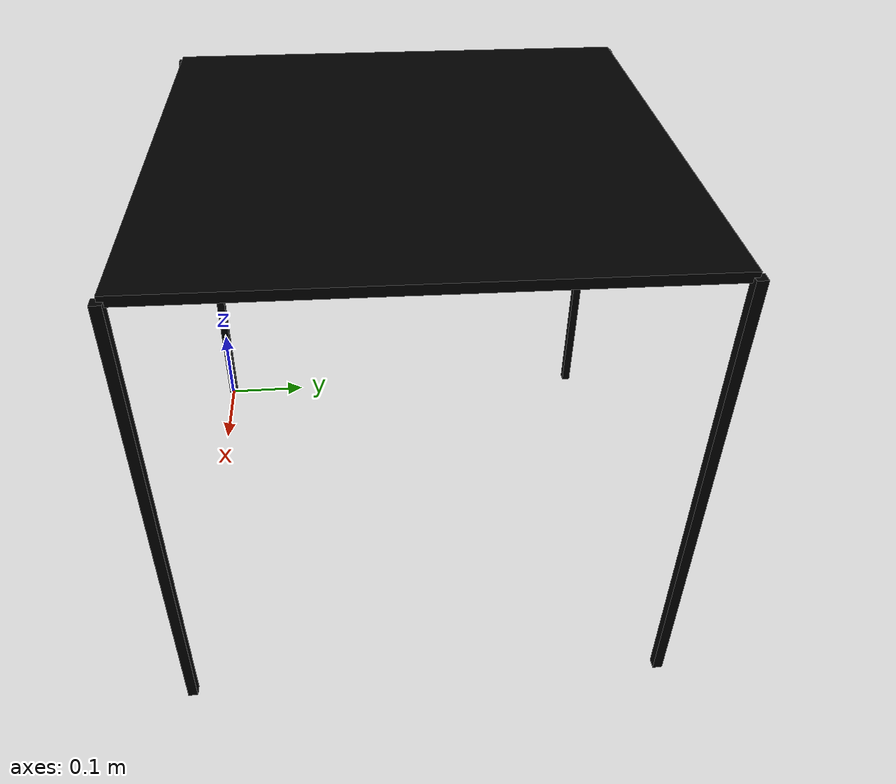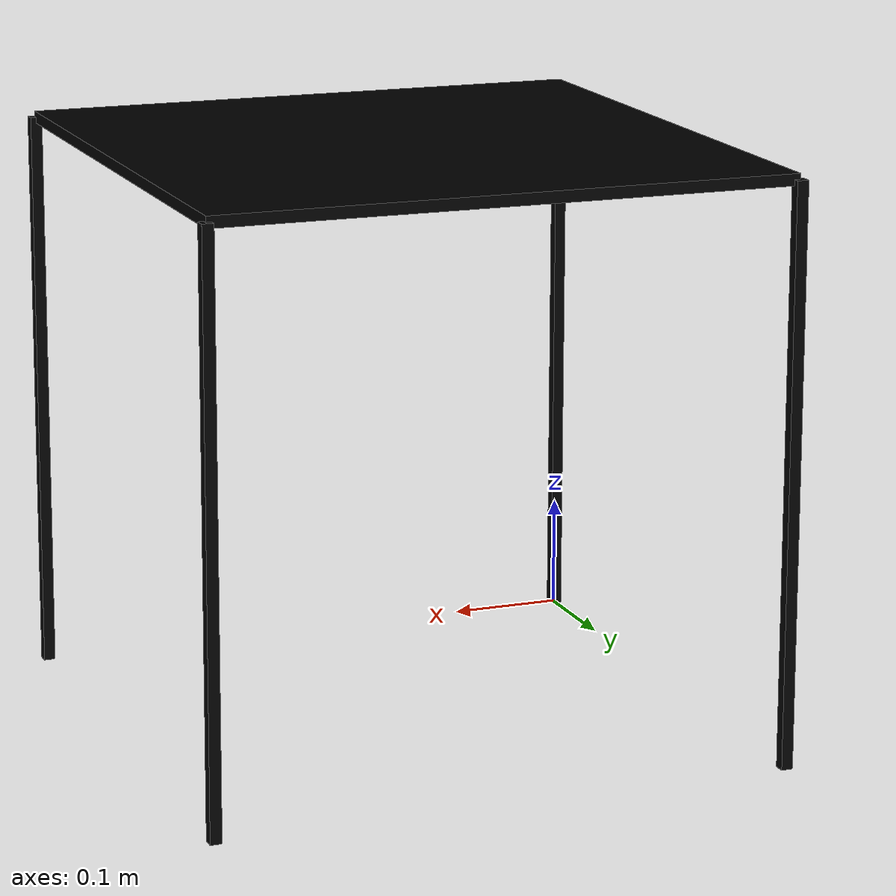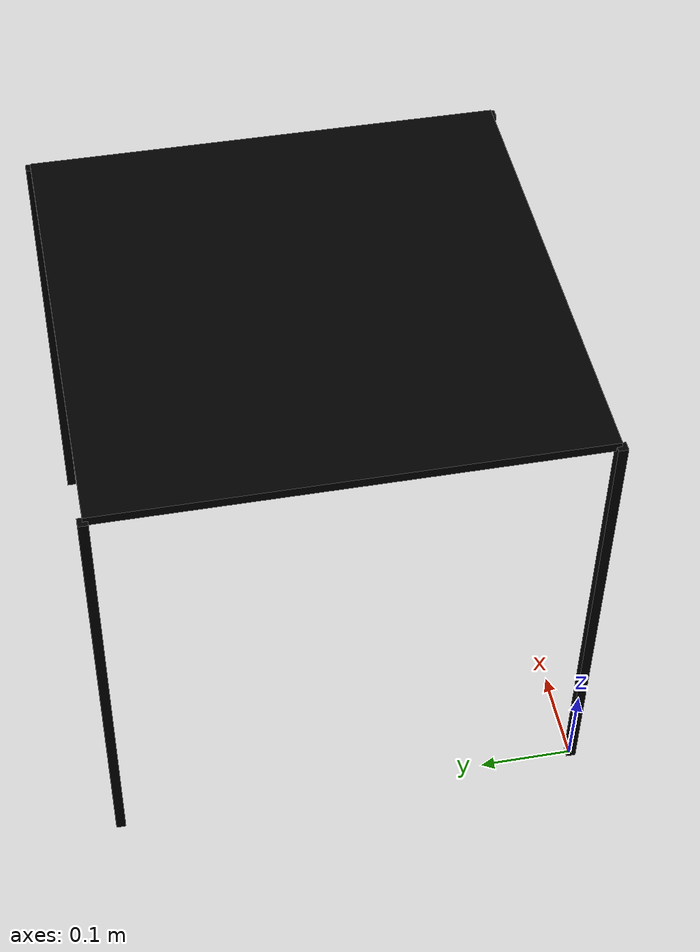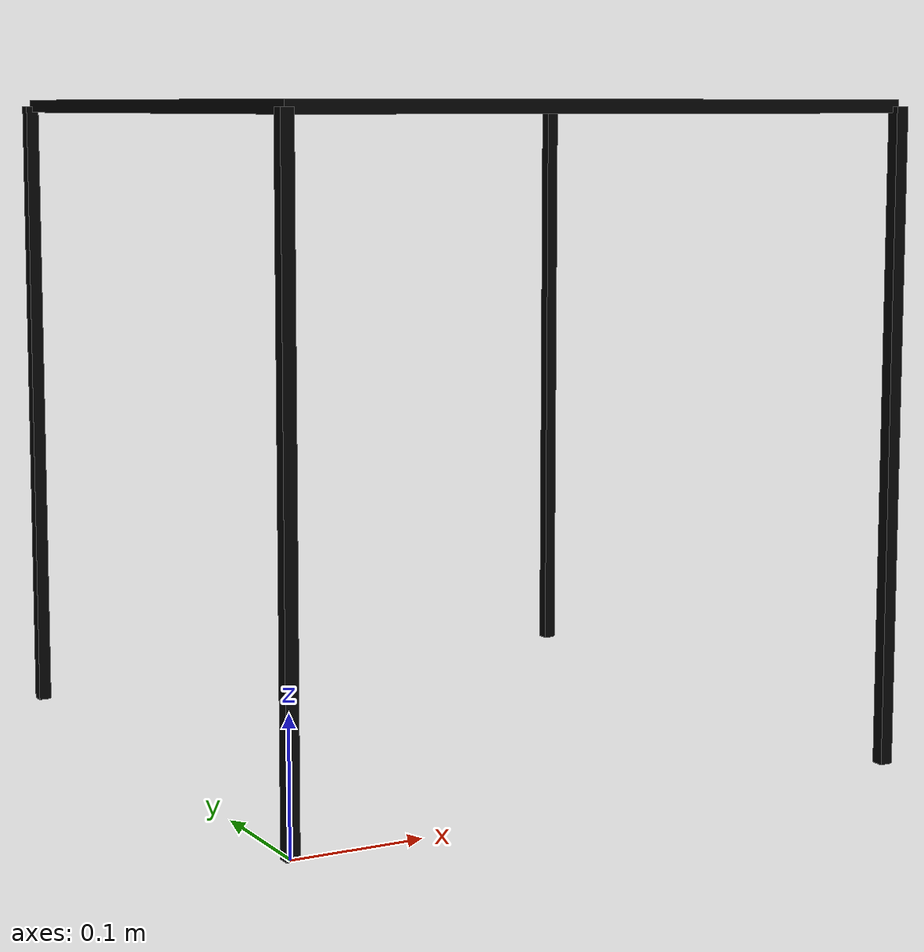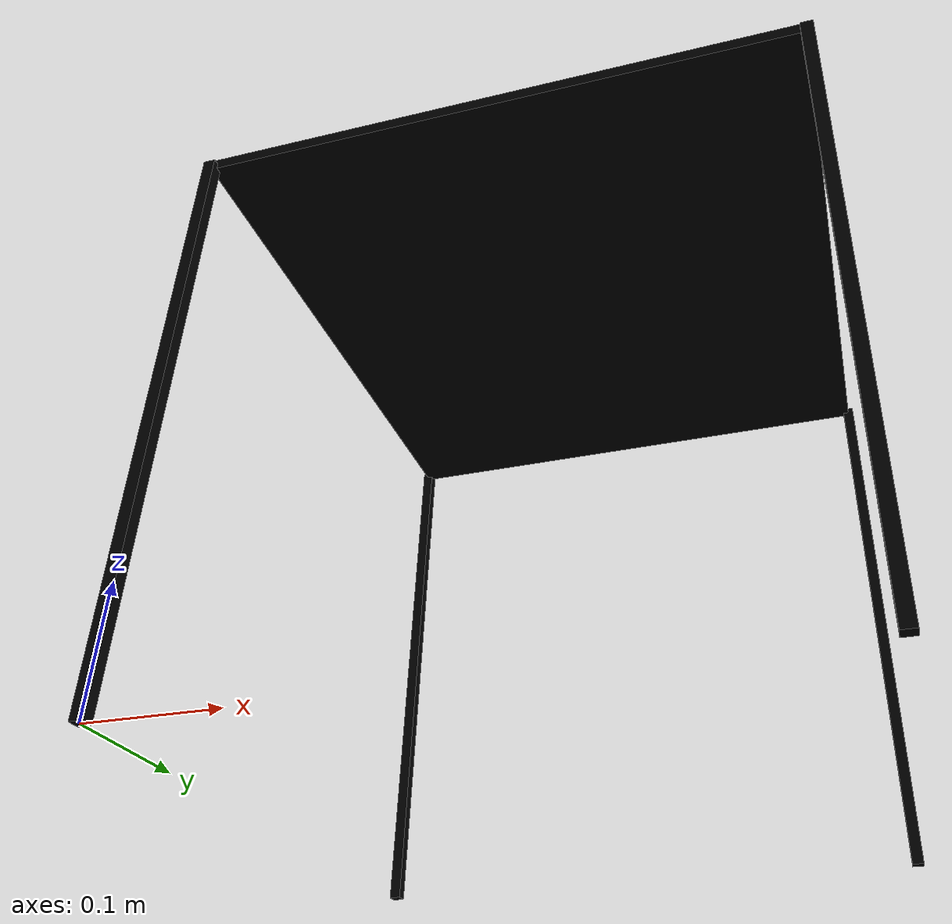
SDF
<sdf version='1.11'>
  <model name='shelf'>
    <link name='poll1'>
      <inertial>
        <pose>0.25 0.25 0.050000000000000003 0 0 0</pose>
        <mass>0.0050000000000000001</mass>
        <inertia>
          <ixx>0.0013447023199999999</ixx>
          <ixy>-1.6947913195454809e-10</ixy>
          <ixz>-2.375268760000139e-08</ixz>
          <iyy>0.001344769652</iyy>
          <iyz>-5.7600428035120901e-11</iyz>
          <izz>0.001582850232</izz>
        </inertia>
      </inertial>
      <collision name='poll1_collision'>
        <pose>0 0 0.25 0 0 0</pose>
        <geometry>
          <box>
            <size>0.01 0.01 0.5</size>
          </box>
        </geometry>
      </collision>
      <collision name='poll1_fixed_joint_lump__poll2_collision_1'>
        <pose>0.5 0 0.25 0 0 0</pose>
        <geometry>
          <box>
            <size>0.01 0.01 0.5</size>
          </box>
        </geometry>
      </collision>
      <collision name='poll1_fixed_joint_lump__poll3_collision_2'>
        <pose>0.5 0.5 0.25 0 0 0</pose>
        <geometry>
          <box>
            <size>0.01 0.01 0.5</size>
          </box>
        </geometry>
      </collision>
      <collision name='poll1_fixed_joint_lump__poll4_collision_3'>
        <pose>0 0.5 0.25 0 0 0</pose>
        <geometry>
          <box>
            <size>0.01 0.01 0.5</size>
          </box>
        </geometry>
      </collision>
      <collision name='poll1_fixed_joint_lump__shle_top_collision_4'>
        <pose>0.25 0.25 0.5 0 0 0</pose>
        <geometry>
          <box>
            <size>0.5 0.5 0.01</size>
          </box>
        </geometry>
      </collision>
      <visual name='poll1_visual'>
        <pose>0 0 0.25 0 0 0</pose>
        <geometry>
          <box>
            <size>0.01 0.01 0.5</size>
          </box>
        </geometry>
        <material>
          <diffuse>0 0 0 1</diffuse>
          <ambient>0 0 0 1</ambient>
        </material>
      </visual>
      <visual name='poll1_fixed_joint_lump__poll2_visual_1'>
        <pose>0.5 0 0.25 0 0 0</pose>
        <geometry>
          <box>
            <size>0.01 0.01 0.5</size>
          </box>
        </geometry>
        <material>
          <diffuse>0 0 0 1</diffuse>
          <ambient>0 0 0 1</ambient>
        </material>
      </visual>
      <visual name='poll1_fixed_joint_lump__poll3_visual_2'>
        <pose>0.5 0.5 0.25 0 0 0</pose>
        <geometry>
          <box>
            <size>0.01 0.01 0.5</size>
          </box>
        </geometry>
        <material>
          <diffuse>0 0 0 1</diffuse>
          <ambient>0 0 0 1</ambient>
        </material>
      </visual>
      <visual name='poll1_fixed_joint_lump__poll4_visual_3'>
        <pose>0 0.5 0.25 0 0 0</pose>
        <geometry>
          <box>
            <size>0.01 0.01 0.5</size>
          </box>
        </geometry>
        <material>
          <diffuse>0 0 0 1</diffuse>
          <ambient>0 0 0 1</ambient>
        </material>
      </visual>
      <visual name='poll1_fixed_joint_lump__shle_top_visual_4'>
        <pose>0.25 0.25 0.5 0 0 0</pose>
        <geometry>
          <box>
            <size>0.5 0.5 0.01</size>
          </box>
        </geometry>
        <material>
          <diffuse>0 0 0 1</diffuse>
          <ambient>0 0 0 1</ambient>
        </material>
      </visual>
    </link>
    <frame name='shlef_top_joint' attached_to='poll4'>
      <pose>0.25 -0.25 0.25 0 0 0</pose>
    </frame>
    <frame name='shle_top' attached_to='shlef_top_joint'>
      <pose>0 0 0 0 0 0</pose>
    </frame>
    <frame name='poll3_joint' attached_to='poll3'>
      <pose>-0.5 0 0 0 0 0</pose>
    </frame>
    <frame name='poll4' attached_to='poll3_joint'>
      <pose>0 0 0 0 0 0</pose>
    </frame>
    <frame name='poll2_joint' attached_to='poll2'>
      <pose>0 0.5 0 0 0 0</pose>
    </frame>
    <frame name='poll3' attached_to='poll2_joint'>
      <pose>0 0 0 0 0 0</pose>
    </frame>
    <frame name='poll1_joint' attached_to='poll1'>
      <pose>0.5 0 0 0 0 0</pose>
    </frame>
    <frame name='poll2' attached_to='poll1_joint'>
      <pose>0 0 0 0 0 0</pose>
    </frame>
  </model>
</sdf>
